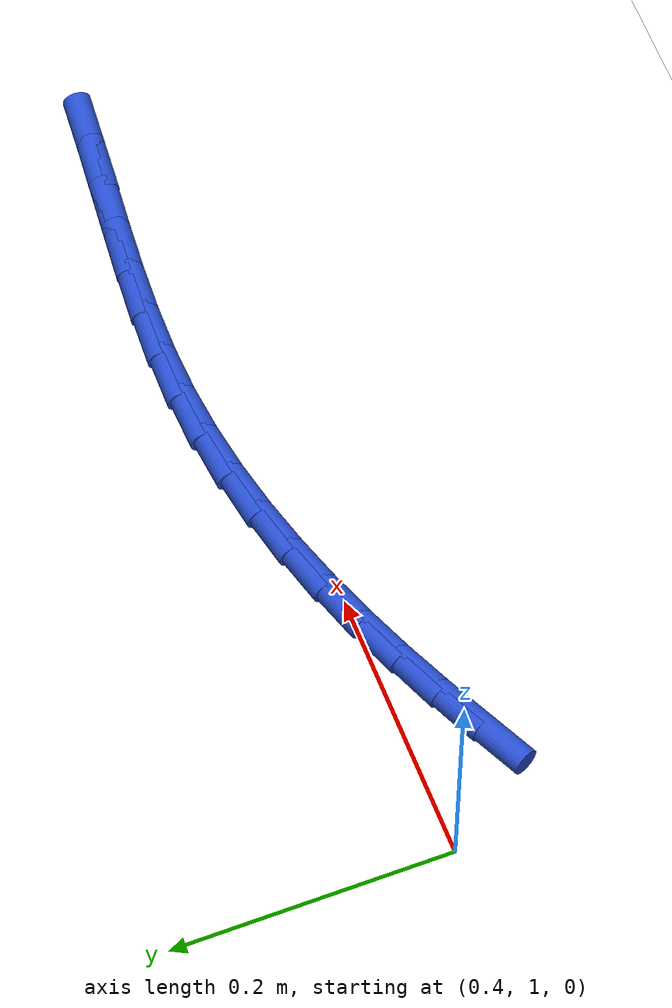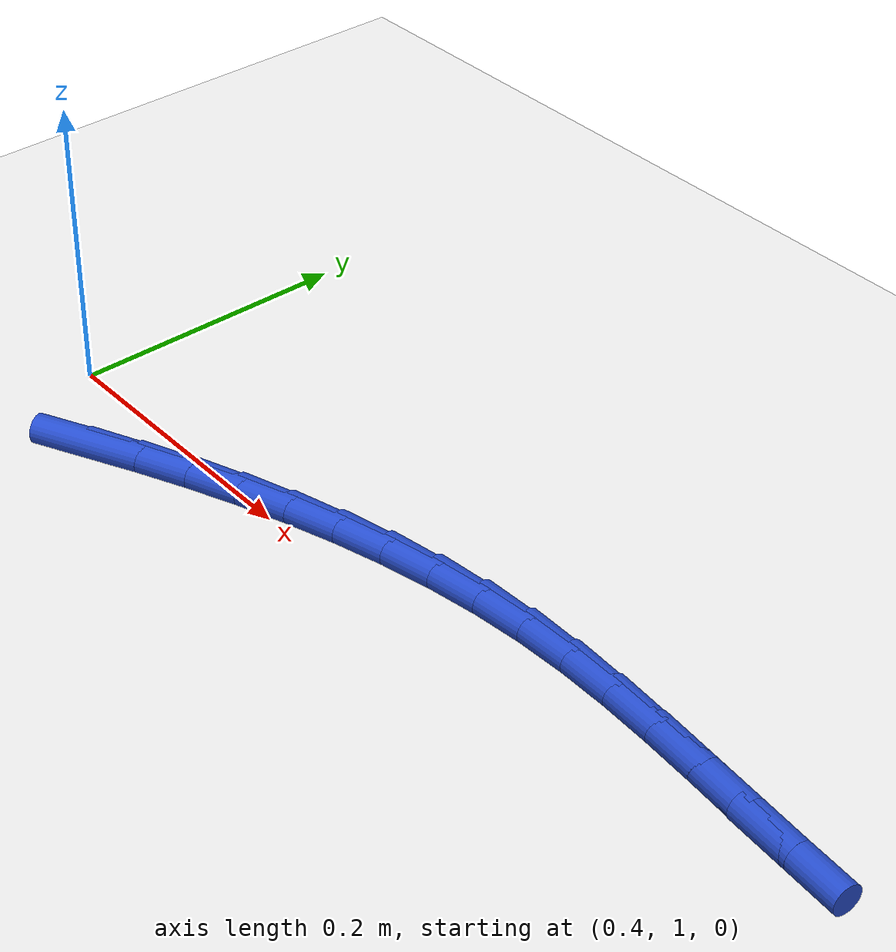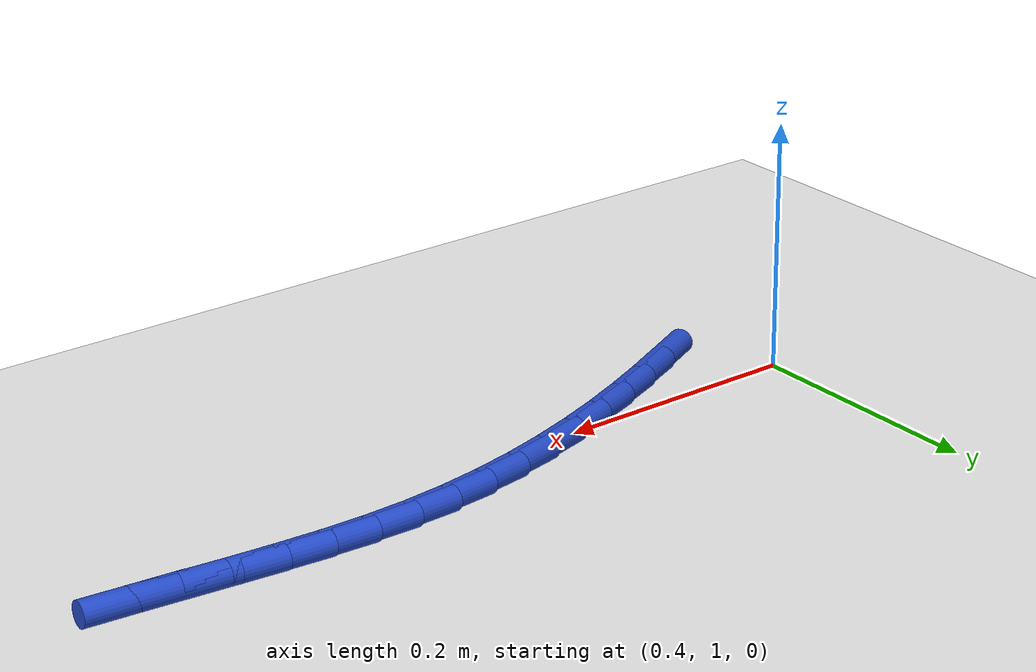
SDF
<sdf version="1.6">
 <world name="default">
  <model name="ground_plane">
   <static>1</static>
   <link name="link">
    <collision name="collision">
     <geometry><plane><normal>0 0 1</normal><size>100 100</size></plane></geometry>
     <surface><friction><ode><mu>100</mu><mu2>50</mu2></ode></friction></surface>
    </collision>
    <visual name="visual">
     <cast_shadows>0</cast_shadows>
     <geometry><plane><normal>0 0 1</normal><size>100 100</size></plane></geometry>
     <material>
      <script><uri>file://media/materials/scripts/gazebo.material</uri><name>Gazebo/WhiteGlow</name></script>
     </material>
    </visual>
   </link>
  </model>
  <model name="line">
   <link name="link_31">
    <pose>0.47577748307462053 0.9520363995556329 0.01 0 1.57 0.45329402082073994</pose>
    <collision name="collision">
     <geometry><cylinder><radius>0.01</radius><length>0.08</length></cylinder></geometry>
    </collision>
    <visual name="visual">
     <material>
      <script><name>Gazebo/Blue</name><uri>file://media/materials/scripts/gazebo.material</uri></script>
     </material>
     <geometry><cylinder><radius>0.01</radius><length>0.08</length></cylinder></geometry>
    </visual>
   </link>
   <link name="link_32">
    <pose>0.5089166664444291 0.968179298074831 0.01 0 1.57 0.4241555221904065</pose>
    <collision name="collision">
     <geometry><cylinder><radius>0.01</radius><length>0.08</length></cylinder></geometry>
    </collision>
    <visual name="visual">
     <material>
      <script><name>Gazebo/Blue</name><uri>file://media/materials/scripts/gazebo.material</uri></script>
     </material>
     <geometry><cylinder><radius>0.01</radius><length>0.08</length></cylinder></geometry>
    </visual>
   </link>
   <link name="link_33">
    <pose>0.542435990628355 0.9833154881498458 0.01 0 1.57 0.3912704653652923</pose>
    <collision name="collision">
     <geometry><cylinder><radius>0.01</radius><length>0.08</length></cylinder></geometry>
    </collision>
    <visual name="visual">
     <material>
      <script><name>Gazebo/Blue</name><uri>file://media/materials/scripts/gazebo.material</uri></script>
     </material>
     <geometry><cylinder><radius>0.01</radius><length>0.08</length></cylinder></geometry>
    </visual>
   </link>
   <link name="link_34">
    <pose>0.5762997081775405 0.9972856540552948 0.01 0 1.57 0.35425517601551254</pose>
    <collision name="collision">
     <geometry><cylinder><radius>0.01</radius><length>0.08</length></cylinder></geometry>
    </collision>
    <visual name="visual">
     <material>
      <script><name>Gazebo/Blue</name><uri>file://media/materials/scripts/gazebo.material</uri></script>
     </material>
     <geometry><cylinder><radius>0.01</radius><length>0.08</length></cylinder></geometry>
    </visual>
   </link>
   <link name="link_35">
    <pose>0.6104751261874367 1.0099257121698246 0.01 0 1.57 0.31287092518859894</pose>
    <collision name="collision">
     <geometry><cylinder><radius>0.01</radius><length>0.08</length></cylinder></geometry>
    </collision>
    <visual name="visual">
     <material>
      <script><name>Gazebo/Blue</name><uri>file://media/materials/scripts/gazebo.material</uri></script>
     </material>
     <geometry><cylinder><radius>0.01</radius><length>0.08</length></cylinder></geometry>
    </visual>
   </link>
   <link name="link_36">
    <pose>0.6449295517534953 1.0210715788720812 0.01 0 1.57 0.26688907058632577</pose>
    <collision name="collision">
     <geometry><cylinder><radius>0.01</radius><length>0.08</length></cylinder></geometry>
    </collision>
    <visual name="visual">
     <material>
      <script><name>Gazebo/Blue</name><uri>file://media/materials/scripts/gazebo.material</uri></script>
     </material>
     <geometry><cylinder><radius>0.01</radius><length>0.08</length></cylinder></geometry>
    </visual>
   </link>
   <link name="link_37">
    <pose>0.6796302919711666 1.0305591705407102 0.01 0 1.57 0.21611515996977596</pose>
    <collision name="collision">
     <geometry><cylinder><radius>0.01</radius><length>0.08</length></cylinder></geometry>
    </collision>
    <visual name="visual">
     <material>
      <script><name>Gazebo/Blue</name><uri>file://media/materials/scripts/gazebo.material</uri></script>
     </material>
     <geometry><cylinder><radius>0.01</radius><length>0.08</length></cylinder></geometry>
    </visual>
   </link>
   <link name="link_38">
    <pose>0.7145446539359029 1.0382244035543584 0.01 0 1.57 0.16042018617782255</pose>
    <collision name="collision">
     <geometry><cylinder><radius>0.01</radius><length>0.08</length></cylinder></geometry>
    </collision>
    <visual name="visual">
     <material>
      <script><name>Gazebo/Blue</name><uri>file://media/materials/scripts/gazebo.material</uri></script>
     </material>
     <geometry><cylinder><radius>0.01</radius><length>0.08</length></cylinder></geometry>
    </visual>
   </link>
   <link name="link_39">
    <pose>0.7496399447431552 1.0439031942916719 0.01 0 1.57 0.09977855602713531</pose>
    <collision name="collision">
     <geometry><cylinder><radius>0.01</radius><length>0.08</length></cylinder></geometry>
    </collision>
    <visual name="visual">
     <material>
      <script><name>Gazebo/Blue</name><uri>file://media/materials/scripts/gazebo.material</uri></script>
     </material>
     <geometry><cylinder><radius>0.01</radius><length>0.08</length></cylinder></geometry>
    </visual>
   </link>
   <link name="link_40">
    <pose>0.7848834714883745 1.0474314591312972 0.01 0 1.57 0.036308845575893534</pose>
    <collision name="collision">
     <geometry><cylinder><radius>0.01</radius><length>0.08</length></cylinder></geometry>
    </collision>
    <visual name="visual">
     <material>
      <script><name>Gazebo/Blue</name><uri>file://media/materials/scripts/gazebo.material</uri></script>
     </material>
     <geometry><cylinder><radius>0.01</radius><length>0.08</length></cylinder></geometry>
    </visual>
   </link>
   <link name="link_41">
    <pose>0.8202459848994611 1.0487159957015366 0.01 0 1.57 -0.018023304363358604</pose>
    <collision name="collision">
     <geometry><cylinder><radius>0.01</radius><length>0.08</length></cylinder></geometry>
    </collision>
    <visual name="visual">
     <material>
      <script><name>Gazebo/Blue</name><uri>file://media/materials/scripts/gazebo.material</uri></script>
     </material>
     <geometry><cylinder><radius>0.01</radius><length>0.08</length></cylinder></geometry>
    </visual>
   </link>
   <link name="link_42">
    <pose>0.8557183003638211 1.0480765981280873 0.01 0 1.57 -0.058795400048411085</pose>
    <collision name="collision">
     <geometry><cylinder><radius>0.01</radius><length>0.08</length></cylinder></geometry>
    </collision>
    <visual name="visual">
     <material>
      <script><name>Gazebo/Blue</name><uri>file://media/materials/scripts/gazebo.material</uri></script>
     </material>
     <geometry><cylinder><radius>0.01</radius><length>0.08</length></cylinder></geometry>
    </visual>
   </link>
   <link name="link_43">
    <pose>0.8912984805479177 1.0459822333080777 0.01 0 1.57 -0.08609924251803423</pose>
    <collision name="collision">
     <geometry><cylinder><radius>0.01</radius><length>0.08</length></cylinder></geometry>
    </collision>
    <visual name="visual">
     <material>
      <script><name>Gazebo/Blue</name><uri>file://media/materials/scripts/gazebo.material</uri></script>
     </material>
     <geometry><cylinder><radius>0.01</radius><length>0.08</length></cylinder></geometry>
    </visual>
   </link>
   <link name="link_44">
    <pose>0.9269845979594197 1.0429020707029173 0.01 0 1.57 -0.10016044524635809</pose>
    <collision name="collision">
     <geometry><cylinder><radius>0.01</radius><length>0.08</length></cylinder></geometry>
    </collision>
    <visual name="visual">
     <material>
      <script><name>Gazebo/Blue</name><uri>file://media/materials/scripts/gazebo.material</uri></script>
     </material>
     <geometry><cylinder><radius>0.01</radius><length>0.08</length></cylinder></geometry>
    </visual>
   </link>
   <link name="link_45">
    <pose>0.9627747251059957 1.039305279774016 0.01 0 1.57 -0.10118641085470102</pose>
    <collision name="collision">
     <geometry><cylinder><radius>0.01</radius><length>0.08</length></cylinder></geometry>
    </collision>
    <visual name="visual">
     <material>
      <script><name>Gazebo/Blue</name><uri>file://media/materials/scripts/gazebo.material</uri></script>
     </material>
     <geometry><cylinder><radius>0.01</radius><length>0.08</length></cylinder></geometry>
    </visual>
   </link>
   <link name="link_46">
    <pose>0.9986669344953145 1.035661029982783 0.01 0 1.57 -0.08929586787570433</pose>
    <collision name="collision">
     <geometry><cylinder><radius>0.01</radius><length>0.08</length></cylinder></geometry>
    </collision>
    <visual name="visual">
     <material>
      <script><name>Gazebo/Blue</name><uri>file://media/materials/scripts/gazebo.material</uri></script>
     </material>
     <geometry><cylinder><radius>0.01</radius><length>0.08</length></cylinder></geometry>
    </visual>
   </link>
  </model>
 </world>
</sdf>
